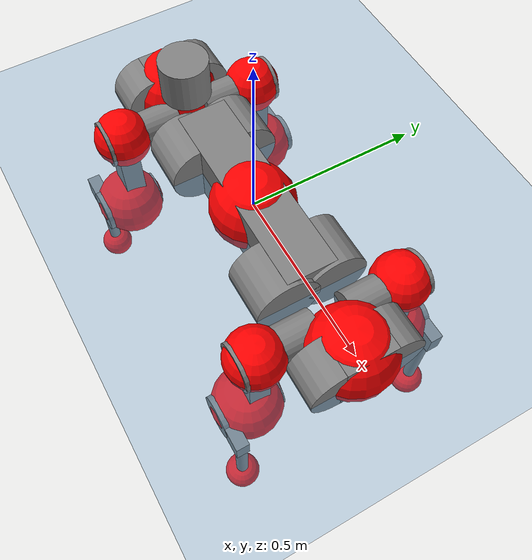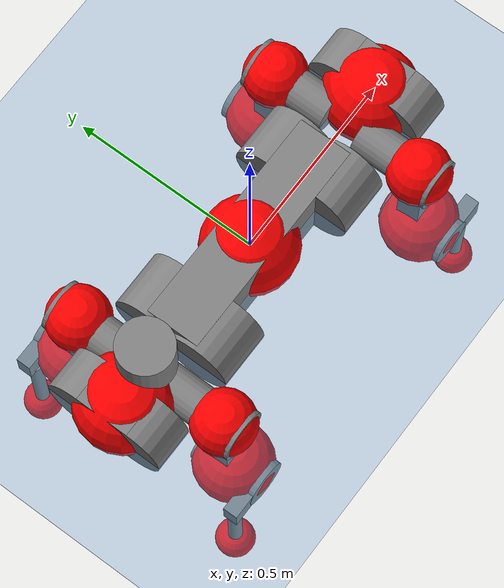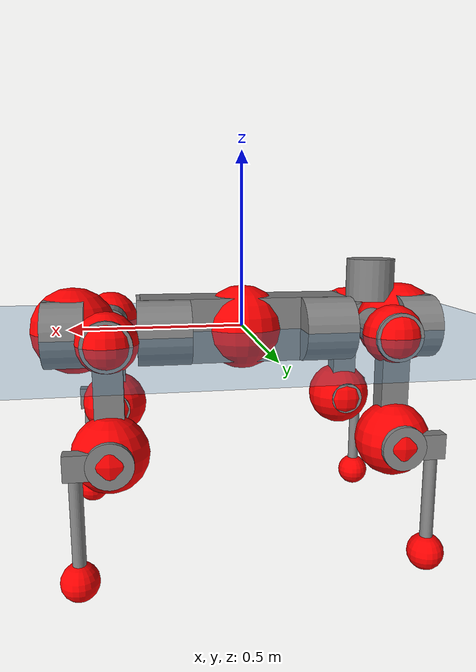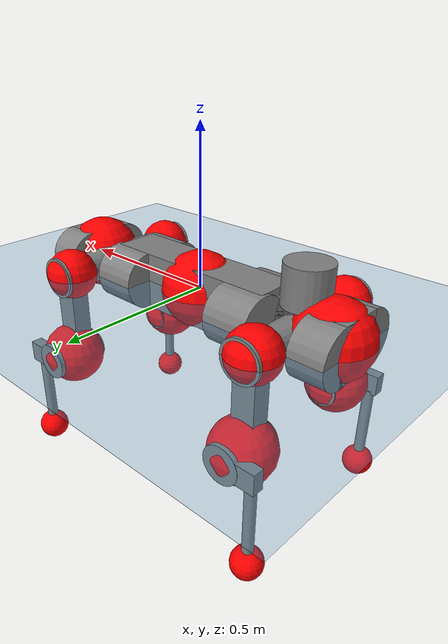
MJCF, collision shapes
<mujoco model="anymal_c">
  <compiler angle="radian" assetdir="assets" balanceinertia="true" inertiafromgeom="false"/>

  <option timestep="0.005" density="1.2" viscosity="2e-05"/>

  <size nkey="1"/>

  <visual>
    <quality shadowsize="8192"/>
    <map shadowclip="0.5"/>
  </visual>

  <default>
    <default class="/">
      <material specular="0" shininess="0.25"/>
      <geom contype="0" conaffinity="0" group="1" solref="-1000 -80"/>
      <site size="0.01 0.005 0.005" group="5"/>
      <general forcelimited="true" forcerange="-80 80" biastype="affine" gainprm="80" biasprm="0 -80 -2"/>
      <default class="anymal_c">
        <joint armature="0.01" damping="0.01" frictionloss="0.1"/>
        <default class="visual">
          <geom type="mesh" group="2"/>
          <default class="visual_zflip"/>
        </default>
        <default class="collision">
          <geom type="cylinder" group="3"/>
          <default class="foot">
            <geom size="0.03 0 0" type="sphere" condim="6" priority="1" friction="0.8 0.02 0.01" solimp="0.015 1 0.03"/>
          </default>
        </default>
      </default>
      <default class="reward_collision_sphere">
        <geom group="5" rgba="1 0 0 1"/>
      </default>
    </default>
  </default>

  <asset>
    <texture type="skybox" colorspace="auto" name="//unnamed_texture_0" builtin="gradient" rgb1="0.95 0.95 0.95" rgb2="0.95 0.95 0.95" width="100" height="600"/>
    <texture type="2d" colorspace="auto" name="texplane" builtin="checker" rgb1="0.345 0.575 0.748" rgb2="0.345 0.575 0.748" markrgb="1 1 1" width="512" height="512"/>
    <texture type="2d" colorspace="linear" name="base" file="base.png"/>
    <texture type="2d" colorspace="linear" name="top_shell" file="top_shell.png"/>
    <texture type="2d" colorspace="linear" name="bottom_shell" file="bottom_shell.png"/>
    <texture type="2d" colorspace="linear" name="remote" file="remote.png"/>
    <texture type="2d" colorspace="linear" name="hatch" file="hatch.png"/>
    <texture type="2d" colorspace="linear" name="handle" file="handle.png"/>
    <texture type="2d" colorspace="linear" name="face" file="face.png"/>
    <texture type="2d" colorspace="linear" name="battery" file="battery.png"/>
    <texture type="2d" colorspace="linear" name="lidar_cage" file="lidar_cage.png"/>
    <texture type="2d" colorspace="linear" name="depth_camera" file="depth_camera.png"/>
    <texture type="2d" colorspace="linear" name="wide_angle_camera" file="wide_angle_camera.png"/>
    <texture type="2d" colorspace="linear" name="lidar" file="lidar.png"/>
    <texture type="2d" colorspace="linear" name="drive" file="drive.png"/>
    <texture type="2d" colorspace="linear" name="hip_l" file="hip_l.png"/>
    <texture type="2d" colorspace="linear" name="shank_l" file="shank_l.png"/>
    <texture type="2d" colorspace="linear" name="foot" file="foot.png"/>
    <texture type="2d" colorspace="linear" name="thigh" file="thigh.png"/>
    <texture type="2d" colorspace="linear" name="shank_r" file="shank_r.png"/>
    <texture type="2d" colorspace="linear" name="hip_r" file="hip_r.png"/>
    <material name="MatPlane" class="/" texture="texplane" texuniform="true" texrepeat="2 2" specular="0.9" shininess="0.5"/>
    <material name="black_plastic" class="/" rgba="0.007 0.007 0.007 1"/>
    <material name="green" class="/" rgba="0.052 0.178 0.033 1"/>
    <material name="red" class="/" rgba="0.178 0.006 0.005 1"/>
    <material name="yellow" class="/" rgba="0.178 0.119 0.006 1"/>
    <material name="lwl" class="/" rgba="0.8 0.8 0.8 1"/>
    <material name="base" class="/" texture="base"/>
    <material name="top_shell" class="/" texture="top_shell"/>
    <material name="bottom_shell" class="/" texture="bottom_shell"/>
    <material name="hip_l" class="/" texture="hip_l"/>
    <material name="thigh" class="/" texture="thigh"/>
    <material name="shank_l" class="/" texture="shank_l"/>
    <material name="foot" class="/" texture="foot"/>
    <material name="hip_r" class="/" texture="hip_r"/>
    <material name="shank" class="/" texture="shank_r"/>
    <material name="hatch" class="/" texture="hatch"/>
    <material name="remote" class="/" texture="remote"/>
    <material name="handle" class="/" texture="handle"/>
    <material name="face" class="/" texture="face"/>
    <material name="depth_camera" class="/" texture="depth_camera"/>
    <material name="wide_angle_camera" class="/" texture="wide_angle_camera"/>
    <material name="battery" class="/" texture="battery"/>
    <material name="lidar_cage" class="/" texture="lidar_cage"/>
    <material name="lidar" class="/" texture="lidar"/>
    <material name="drive" class="/" texture="drive"/>
    <mesh name="base_0" class="/" file="base_0.obj"/>
    <mesh name="base_1" class="/" file="base_1.obj"/>
    <mesh name="base_2" class="/" file="base_2.obj"/>
    <mesh name="base_3" class="/" file="base_3.obj"/>
    <mesh name="base_4" class="/" file="base_4.obj"/>
    <mesh name="base_5" class="/" file="base_5.obj"/>
    <mesh name="top_shell" class="/" file="top_shell.obj"/>
    <mesh name="bottom_shell" class="/" file="bottom_shell.obj"/>
    <mesh name="remote" class="/" file="remote.obj"/>
    <mesh name="handle" class="/" file="handle.obj"/>
    <mesh name="face" class="/" file="face.obj"/>
    <mesh name="wide_angle_camera" class="/" file="wide_angle_camera.obj"/>
    <mesh name="depth_camera" class="/" file="depth_camera.obj"/>
    <mesh name="battery" class="/" file="battery.obj"/>
    <mesh name="lidar_cage" class="/" file="lidar_cage.obj"/>
    <mesh name="lidar" class="/" file="lidar.obj"/>
    <mesh name="drive" class="/" file="drive.obj"/>
    <mesh name="hip_l" class="/" file="hip_l.obj"/>
    <mesh name="thigh" class="/" file="thigh.obj"/>
    <mesh name="shank_l" class="/" file="shank_l.obj"/>
    <mesh name="foot" class="/" file="foot.obj"/>
    <mesh name="hip_r" class="/" file="hip_r.obj"/>
    <mesh name="hatch" class="/" file="hatch.obj"/>
    <mesh name="shank_r" class="/" file="shank_r.obj"/>
  </asset>

  <worldbody>
    <geom name="floor" class="/" size="100 100 0.125" type="plane" group="0" material="MatPlane"/>
    <light name="toplight_shadow" class="/" pos="0 0 5" dir="0.0990148 0.0990148 -0.990148" type="directional" ambient="0.04 0.04 0.04" diffuse="0.55 0.55 0.55" specular="0.12 0.12 0.12"/>
    <light name="toplight_fill" class="/" pos="0 0 5" dir="0.0990148 0.0990148 -0.990148" type="directional" castshadow="false" ambient="0.04 0.04 0.04" diffuse="0.3 0.3 0.3" specular="0.08 0.08 0.08"/>
    <body name="trunk" childclass="anymal_c" pos="-0.000349518 -0.000334465 -0.00267558" quat="0.999999 0.000955948 -0.000867749 -0.000274549">
      <inertial pos="0.00299979 0.00208958 0.0498955" quat="0.490582 0.506736 0.49719 0.505322" mass="20.7684" diaginertia="0.958443 0.616958 0.236087"/>
      <joint name="//unnamed_joint_0" type="free" armature="0" damping="0" frictionloss="0"/>
      <geom name="//unnamed_geom_1" class="visual" material="green" mesh="base_0"/>
      <geom name="//unnamed_geom_2" class="visual" material="yellow" mesh="base_1"/>
      <geom name="//unnamed_geom_3" class="visual" material="red" mesh="base_2"/>
      <geom name="//unnamed_geom_4" class="visual" material="black_plastic" mesh="base_3"/>
      <geom name="//unnamed_geom_5" class="visual" material="lwl" mesh="base_4"/>
      <geom name="//unnamed_geom_6" class="visual" material="base" mesh="base_5"/>
      <geom name="trunk_1" class="collision" size="0.297189 0.0717352 0.0922309" type="box"/>
      <geom name="trunk_2" class="collision" size="0.0922309 0.0742971" pos="0.23412 0.0692337 0" quat="0.707107 0 0.707107 0"/>
      <geom name="trunk_3" class="collision" size="0.0922309 0.0742971" pos="-0.23412 0.0692337 0" quat="0.707107 0 0.707107 0"/>
      <geom name="trunk_4" class="collision" size="0.0922309 0.0742971" pos="0.23412 -0.0692337 0" quat="0.707107 0 0.707107 0"/>
      <geom name="trunk_5" class="collision" size="0.0922309 0.0742971" pos="-0.23412 -0.0692337 0" quat="0.707107 0 0.707107 0"/>
      <geom name="//unnamed_geom_12" class="visual" material="top_shell" mesh="top_shell"/>
      <geom name="//unnamed_geom_13" class="visual" material="bottom_shell" mesh="bottom_shell"/>
      <geom name="//unnamed_geom_14" class="visual" material="remote" mesh="remote"/>
      <geom name="//unnamed_geom_15" class="visual" material="handle" mesh="handle"/>
      <geom name="//unnamed_geom_16" class="visual" pos="0.446173 0 0" quat="1 0 0 0" material="face" mesh="face"/>
      <geom name="trunk_6" class="collision" size="0.0563634 0.0717352 0.0922309" pos="0.505376 0 0" type="box"/>
      <geom name="//unnamed_geom_18" class="collision" size="0.0922309 0.0563634" pos="0.505376 0.0692337 0" quat="0.707107 0 0.707107 0"/>
      <geom name="//unnamed_geom_19" class="collision" size="0.0922309 0.0563634" pos="0.505376 -0.0692337 0" quat="0.707107 0 0.707107 0"/>
      <geom name="//unnamed_geom_20" class="visual" pos="0.496923 0 -0.0289467" quat="0.965926 0 0.258819 0" material="depth_camera" mesh="depth_camera"/>
      <geom name="//unnamed_geom_21" class="visual" pos="0.5522 0 0.0151032" material="wide_angle_camera" mesh="wide_angle_camera"/>
      <geom name="//unnamed_geom_22" class="visual_zflip" pos="-0.446173 0 0" quat="0 0 0 1" material="face" mesh="face"/>
      <geom name="trunk_7" class="collision" size="0.0563634 0.0717352 0.0922309" pos="-0.505376 0 0" quat="0 0 0 1" type="box"/>
      <geom name="//unnamed_geom_24" class="collision" size="0.0922309 0.0563634" pos="-0.505376 -0.0692337 0" quat="0 -0.707107 0 0.707107"/>
      <geom name="//unnamed_geom_25" class="collision" size="0.0922309 0.0563634" pos="-0.505376 0.0692337 0" quat="0 -0.707107 0 0.707107"/>
      <geom name="//unnamed_geom_26" class="visual" pos="-0.496923 0 -0.0289467" quat="0 -0.258819 0 0.965926" material="depth_camera" mesh="depth_camera"/>
      <geom name="//unnamed_geom_27" class="visual_zflip" pos="-0.5522 0 0.0151032" quat="0 0 0 1" material="wide_angle_camera" mesh="wide_angle_camera"/>
      <geom name="//unnamed_geom_28" class="visual" material="battery" mesh="battery"/>
      <geom name="//unnamed_geom_29" class="visual" pos="0 0.0744738 0.0298216" quat="0.683013 -0.183013 0.183013 0.683013" material="depth_camera" mesh="depth_camera"/>
      <geom name="//unnamed_geom_30" class="visual" pos="0 -0.0744738 0.0298216" quat="0.683013 0.183013 0.183013 -0.683013" material="depth_camera" mesh="depth_camera"/>
      <geom name="//unnamed_geom_31" class="visual" pos="-0.391814 0 0.0741541" quat="1 0 0 0" material="lidar_cage" mesh="lidar_cage"/>
      <geom name="trunk_8" class="collision" size="0.0717352 0.0614873" pos="-0.391814 0 0.134688"/>
      <geom name="//unnamed_geom_33" class="visual" pos="-0.391814 -3.43213e-05 0.143465" quat="0.707107 0 0 -0.707107" material="lidar" mesh="lidar"/>
      <geom name="//unnamed_geom_34" class="visual" pos="0.322816 0.102869 -3.42342e-10" quat="0.258819 0.965926 0 0" material="drive" mesh="drive"/>
      <geom name="//unnamed_geom_35" class="visual" pos="0.322816 -0.102869 3.42342e-10" quat="0.258819 -0.965926 0 0" material="drive" mesh="drive"/>
      <geom name="//unnamed_geom_36" class="visual" pos="-0.322816 0.102869 3.42342e-10" quat="0 0 0.965926 -0.258819" material="drive" mesh="drive"/>
      <geom name="//unnamed_geom_37" class="visual" pos="-0.322816 -0.102869 -3.42342e-10" quat="0 0 -0.965926 -0.258819" material="drive" mesh="drive"/>
      <geom name="//unnamed_geom_38" class="visual" pos="0.124864 0 0.0736496" quat="1 0 0 0" material="hatch" mesh="hatch"/>
      <geom name="//unnamed_geom_39" class="reward_collision_sphere" size="0.122975"/>
      <geom name="//unnamed_geom_40" class="reward_collision_sphere" size="0.122975" pos="0.484386 0 0"/>
      <geom name="//unnamed_geom_41" class="reward_collision_sphere" size="0.122975" pos="-0.484386 0 0"/>
      <site name="imu" pos="0.26315 0.0128538 0.0361662" size="0.0102479"/>
      <camera name="track" pos="0 -1.97811 0" quat="0.707107 0.707107 0 0" mode="trackcom"/>
      <camera name="ego_camera" pos="0.484386 0 -0.040356" quat="-0.5 -0.5 0.5 0.5"/>
      <body name="LF_HIP" pos="0.323274 0.102887 0.00183932" quat="0.258817 0.965926 1.91497e-06 2.36807e-06">
        <inertial pos="0.0584744 -0.0150586 -0.0108151" quat="-0.129241 0.710943 -0.147903 0.675264" mass="2.95451" diaginertia="0.00857167 0.00466393 0.00340381"/>
        <joint name="LF_HAA" pos="0 0 0" axis="0.999953 0.00613774 0.00747279" range="-0.718382 0.499876" armature="0.0102815" damping="0.000653051" frictionloss="0.105172"/>
        <geom name="//unnamed_geom_42" class="visual" pos="0 -2.01384e-05 3.30772e-06" quat="0.258819 -0.965926 0 0" material="hip_l" mesh="hip_l"/>
        <geom name="//unnamed_geom_43" class="visual" pos="0.0644771 -0.0769846 -0.0445939" quat="0.183013 -0.683013 0.683013 0.183013" material="drive" mesh="drive"/>
        <geom name="//unnamed_geom_44" class="collision" size="0.0512394 0.0717352" pos="0.0644771 -0.0118289 -0.00696645" quat="-0.353553 -0.612372 0.612372 -0.353553"/>
        <body name="LF_THIGH" pos="0.0627155 -0.0710799 -0.0402232" quat="0.182789 -0.682898 0.683125 0.183247">
          <inertial pos="0.0332702 2.45777e-05 -0.248376" quat="0.993351 -0.00430469 -0.082433 0.08025" mass="3.15965" diaginertia="0.0418287 0.0273925 0.00412005"/>
          <joint name="LF_HFE" pos="0 0 0" axis="0.999997 -0.000352808 0.00252481" stiffness="0.00240288" range="-3.16087 3.13642" armature="0.00940639" damping="0.0166666" frictionloss="0.102476"/>
          <geom name="//unnamed_geom_45" class="visual" pos="0.00173812 2.73887e-06 0" quat="0.707107 0 0 -0.707107" material="thigh" mesh="thigh"/>
          <geom name="//unnamed_geom_46" class="collision" size="0.0666112 0.0409915" pos="0.0430565 0 0" quat="0.5 0.5 -0.5 -0.5"/>
          <geom name="//unnamed_geom_47" class="collision" size="0.0384296 0.0307436 0.144817" pos="0.0322924 0 -0.142572" quat="0.707107 0 0 -0.707107" type="box"/>
          <geom name="//unnamed_geom_48" class="visual" pos="0.107964 0 -0.287536" quat="1 0 0 0" material="drive" mesh="drive"/>
          <geom name="//unnamed_geom_49" class="collision" size="0.0512394 0.0717352" pos="0.0326153 0 -0.287536" quat="0.707107 0 0.707107 0"/>
          <geom name="//unnamed_geom_50" class="reward_collision_sphere" size="0.0819831" pos="0.0269103 0 0"/>
          <body name="LF_SHANK" pos="0.106966 -6.04791e-05 -0.288377" quat="1 6.63974e-05 5.94587e-05 -2.28031e-05">
            <inertial pos="0.00327605 -0.0632108 -0.0812768" quat="0.993228 -0.113343 -0.0020365 -0.025446" mass="0.627332" diaginertia="0.0141115 0.00868692 0.00116668"/>
            <joint name="LF_KFE" pos="0 0 0" axis="0.999979 -0.000565173 -0.00652521" stiffness="0.000269195" range="-3.19227 3.15674" armature="0.0106718" damping="0.014245" frictionloss="0.116092"/>
            <geom name="//unnamed_geom_51" class="visual" pos="0.000566762 0.003022 0" quat="0.707107 0 0 -0.707107" material="shank_l" mesh="shank_l"/>
            <geom name="LF_kfe_act" class="collision" size="0.0614873 0.0204958" pos="0.0215283 0 0" quat="0.5 0.5 -0.5 -0.5"/>
            <geom name="//unnamed_geom_53" class="collision" size="0.0589243 0.0345866 0.019471" pos="0.0215283 -0.0568696 0" quat="0.5 0.5 -0.5 -0.5" type="box"/>
            <geom name="//unnamed_geom_54" class="visual" pos="0.014047 -0.0860133 -0.340978" quat="0.382683 0 0 -0.92388" material="foot" mesh="foot"/>
            <geom name="LF_calf" class="collision" size="0.0179338 0.144753" pos="0.0140472 -0.0869872 -0.170489" quat="0.707107 0 0 -0.707107"/>
            <geom name="LF_foot" class="foot" size="0.0304573" pos="0.0140472 -0.0869872 -0.318277" quat="0.707107 0 0 -0.707107"/>
            <geom name="//unnamed_geom_57" class="reward_collision_sphere" size="0.102479" pos="-0.0538206 0 0"/>
            <geom name="//unnamed_geom_58" class="reward_collision_sphere" size="0.0512394" pos="0.0140472 -0.0869872 -0.318277"/>
            <site name="LF_foot" class="foot" pos="0.0140472 -0.0869872 -0.318277" quat="0.707107 0 0 -0.707107" size="0.0102479"/>
          </body>
        </body>
      </body>
      <body name="RF_HIP" pos="0.322908 -0.103272 0.00132094" quat="0.259137 -0.96584 0.000318967 -0.00111558">
        <inertial pos="0.061599 0.0155652 -0.00798481" quat="0.127989 0.671671 0.131279 0.717804" mass="3.12753" diaginertia="0.0084725 0.00469114 0.00345624"/>
        <joint name="RF_HAA" pos="0 0 0" axis="0.999999 -0.000958845 -0.000659361" range="-0.546825 0.712752" armature="0.00975016" damping="0.00572134" frictionloss="0.109346"/>
        <geom name="//unnamed_geom_59" class="visual" pos="0 2.01383e-05 3.30771e-06" quat="0.258819 0.965926 0 0" material="hip_r" mesh="hip_r"/>
        <geom name="//unnamed_geom_60" class="visual" pos="0.0644771 0.0769846 -0.0445939" quat="0.183013 0.683013 0.683013 -0.183013" material="drive" mesh="drive"/>
        <geom name="//unnamed_geom_61" class="collision" size="0.0512394 0.0717352" pos="0.0644771 0.0118289 -0.00696645" quat="-0.353553 0.612372 0.612372 0.353553"/>
        <body name="RF_THIGH" pos="0.0650815 0.0704181 -0.0422524" quat="0.18307 0.683011 0.682992 -0.18304">
          <inertial pos="0.0331484 -0.000213581 -0.246791" quat="0.992445 -0.00777525 -0.0849454 0.0881853" mass="3.3794" diaginertia="0.0438916 0.0274218 0.00435516"/>
          <joint name="RF_HFE" pos="0 0 0" axis="0.999998 -0.00179942 0.000503443" stiffness="0.0137221" range="-3.13879 3.12164" armature="0.0103188" damping="0" frictionloss="0.0914572"/>
          <geom name="//unnamed_geom_62" class="visual" pos="0.00173812 2.73887e-06 0" quat="0.707107 0 0 -0.707107" material="thigh" mesh="thigh"/>
          <geom name="//unnamed_geom_63" class="collision" size="0.0666112 0.0409915" pos="0.0430565 0 0" quat="0.5 0.5 0.5 0.5"/>
          <geom name="//unnamed_geom_64" class="collision" size="0.0384296 0.0307436 0.144817" pos="0.0322924 0 -0.142572" quat="0.707107 0 0 0.707107" type="box"/>
          <geom name="//unnamed_geom_65" class="visual" pos="0.107964 0 -0.287536" quat="1 0 0 0" material="drive" mesh="drive"/>
          <geom name="//unnamed_geom_66" class="collision" size="0.0512394 0.0717352" pos="0.0326153 0 -0.287536" quat="0.707107 0 0.707107 0"/>
          <geom name="//unnamed_geom_67" class="reward_collision_sphere" size="0.0819831" pos="0.0269103 0 0"/>
          <body name="RF_SHANK" pos="0.104946 -0.00069949 -0.288029" quat="1 -3.13806e-05 -0.000532397 -6.50543e-05">
            <inertial pos="0.00708175 0.0580212 -0.0789555" quat="0.991371 0.127113 0.000483637 0.032029" mass="0.617965" diaginertia="0.0141249 0.00872187 0.0011139"/>
            <joint name="RF_KFE" pos="0 0 0" axis="1 0.000500329 0.000178075" range="-3.1312 3.14454" armature="0.0103108" damping="0" frictionloss="0.101115"/>
            <geom name="//unnamed_geom_68" class="visual" pos="0.000566759 -0.003022 0" quat="0.707107 0 0 0.707107" material="shank" mesh="shank_r"/>
            <geom name="RF_kfe_act" class="collision" size="0.0614873 0.0204958" pos="0.0215283 0 0" quat="0.5 0.5 0.5 0.5"/>
            <geom name="//unnamed_geom_70" class="collision" size="0.0589243 0.0345866 0.019471" pos="0.0215283 0.0568696 0" quat="0.5 0.5 0.5 0.5" type="box"/>
            <geom name="//unnamed_geom_71" class="visual" pos="0.0140473 0.0860133 -0.340978" quat="0.382683 0 0 0.92388" material="foot" mesh="foot"/>
            <geom name="RF_calf" class="collision" size="0.0179338 0.144753" pos="0.0140472 0.0869872 -0.170489" quat="0.707107 0 0 0.707107"/>
            <geom name="RF_foot" class="foot" size="0.0285694" pos="0.0140472 0.0869872 -0.318277" quat="0.707107 0 0 0.707107"/>
            <geom name="//unnamed_geom_74" class="reward_collision_sphere" size="0.102479" pos="-0.0538206 0 0"/>
            <geom name="//unnamed_geom_75" class="reward_collision_sphere" size="0.0512394" pos="0.0140472 0.0869872 -0.318277"/>
            <site name="RF_foot" class="foot" pos="0.0140472 0.0869872 -0.318277" quat="0.707107 0 0 0.707107" size="0.0102479"/>
          </body>
        </body>
      </body>
      <body name="LH_HIP" pos="-0.322001 0.101748 0.00253278" quat="-0.000194624 -0.000323428 0.965833 -0.259166">
        <inertial pos="0.062093 0.0122995 -0.0111256" quat="0.137119 0.679659 0.127475 0.709234" mass="2.96354" diaginertia="0.00834983 0.00458261 0.00331379"/>
        <joint name="LH_HAA" pos="0 0 0" axis="0.999903 -0.00792022 -0.0114526" stiffness="8.90937e-05" range="-0.544392 0.775048" armature="0.0114764" damping="0.013264" frictionloss="0.103093"/>
        <geom name="//unnamed_geom_76" class="visual" pos="0 2.01383e-05 3.30771e-06" quat="-0.258819 -0.965926 0 0" material="hip_r" mesh="hip_r"/>
        <geom name="//unnamed_geom_77" class="visual" pos="0.0644771 0.0769846 -0.0445939" quat="0.183013 0.683013 0.683013 -0.183013" material="drive" mesh="drive"/>
        <geom name="//unnamed_geom_78" class="collision" size="0.0512394 0.0717352" pos="0.0644771 0.0118289 -0.00696645" quat="-0.353553 0.612372 0.612372 0.353553"/>
        <body name="LH_THIGH" pos="0.0636101 0.0695953 -0.0406094" quat="0.182185 0.682585 0.683669 -0.182981">
          <inertial pos="0.0358657 -0.00203504 -0.250291" quat="0.992769 -0.00508948 -0.0807074 0.0887113" mass="3.38727" diaginertia="0.0466074 0.0289968 0.00460462"/>
          <joint name="LH_HFE" pos="0 0 0" axis="0.9999 -0.0141052 0.000712634" range="-3.17048 3.15039" armature="0.010653" damping="0" frictionloss="0.102447"/>
          <geom name="//unnamed_geom_79" class="visual" pos="0.00173812 2.73887e-06 0" quat="0.707107 0 0 -0.707107" material="thigh" mesh="thigh"/>
          <geom name="//unnamed_geom_80" class="collision" size="0.0666112 0.0409915" pos="0.0430565 0 0" quat="0.5 0.5 -0.5 -0.5"/>
          <geom name="//unnamed_geom_81" class="collision" size="0.0384296 0.0307436 0.144817" pos="0.0322924 0 -0.142572" quat="0.707107 0 0 -0.707107" type="box"/>
          <geom name="//unnamed_geom_82" class="visual" pos="0.107964 0 -0.287536" quat="1 0 0 0" material="drive" mesh="drive"/>
          <geom name="//unnamed_geom_83" class="collision" size="0.0512394 0.0717352" pos="0.0326153 0 -0.287536" quat="0.707107 0 0.707107 0"/>
          <geom name="//unnamed_geom_84" class="reward_collision_sphere" size="0.0819831" pos="0.0269103 0 0"/>
          <body name="LH_SHANK" pos="0.107043 0.000234865 -0.289616" quat="0.999999 0.00113064 -0.00044361 -0.000188423">
            <inertial pos="0.00322301 0.0618843 -0.0839643" quat="0.994086 0.104609 0.00411591 0.0288773" mass="0.62361" diaginertia="0.0143938 0.00850658 0.00114161"/>
            <joint name="LH_KFE" pos="0 0 0" axis="0.99996 -0.00418502 -0.00796752" stiffness="0.00251709" range="-3.15515 3.08849" armature="0.0116243" damping="0" frictionloss="0.103308"/>
            <geom name="//unnamed_geom_85" class="visual" pos="0.000566759 -0.003022 0" quat="-0.707107 0 0 -0.707107" material="shank" mesh="shank_r"/>
            <geom name="LH_kfe_act" class="collision" size="0.0614873 0.0204958" pos="0.0215283 0 0" quat="0.5 0.5 -0.5 -0.5"/>
            <geom name="//unnamed_geom_87" class="collision" size="0.0589243 0.0345866 0.019471" pos="0.0215283 0.0568696 0" quat="0.5 0.5 -0.5 -0.5" type="box"/>
            <geom name="//unnamed_geom_88" class="visual" pos="0.0140473 0.0860133 -0.340978" quat="-0.382683 0 0 -0.92388" material="foot" mesh="foot"/>
            <geom name="LH_calf" class="collision" size="0.0179338 0.144753" pos="0.0140472 0.0869872 -0.170489" quat="0.707107 0 0 -0.707107"/>
            <geom name="LH_foot" class="foot" size="0.03161" pos="0.0140472 0.0869872 -0.318277" quat="0.707107 0 0 -0.707107"/>
            <geom name="//unnamed_geom_91" class="reward_collision_sphere" size="0.102479" pos="-0.0538206 0 0"/>
            <geom name="//unnamed_geom_92" class="reward_collision_sphere" size="0.0512394" pos="0.0140472 0.0869872 -0.318277"/>
            <site name="LH_foot" class="foot" pos="0.0140472 0.0869872 -0.318277" quat="0.707107 0 0 -0.707107" size="0.0102479"/>
          </body>
        </body>
      </body>
      <body name="RH_HIP" pos="-0.3201 -0.10327 0.00290978" quat="-4.72497e-06 6.53867e-06 -0.965925 -0.258823">
        <inertial pos="0.0587628 -0.0162654 -0.00857763" quat="-0.140019 0.705579 -0.133664 0.68168" mass="2.99305" diaginertia="0.0090378 0.00483141 0.00357923"/>
        <joint name="RH_HAA" pos="0 0 0" axis="0.999907 0.0116473 0.00709007" stiffness="0.000278548" range="-0.727469 0.49281" armature="0.0102993" damping="0.0108414" frictionloss="0.115944"/>
        <geom name="//unnamed_geom_93" class="visual" pos="0 -2.01384e-05 3.30772e-06" quat="-0.258819 0.965926 0 0" material="hip_l" mesh="hip_l"/>
        <geom name="//unnamed_geom_94" class="visual" pos="0.0644771 -0.0769846 -0.0445939" quat="-0.183013 0.683013 -0.683013 -0.183013" material="drive" mesh="drive"/>
        <geom name="//unnamed_geom_95" class="collision" size="0.0512394 0.0717352" pos="0.0644771 -0.0118289 -0.00696645" quat="0.353553 0.612372 -0.612372 0.353553"/>
        <body name="RH_THIGH" pos="0.0644343 -0.0717035 -0.0435311" quat="-0.183138 0.683293 -0.682745 -0.182839">
          <inertial pos="0.0332308 -0.000624388 -0.250222" quat="0.992699 -0.00101972 -0.0802709 0.0900275" mass="3.23161" diaginertia="0.0455609 0.0286583 0.00436503"/>
          <joint name="RH_HFE" pos="0 0 0" axis="1 0.000180903 0.00059124" stiffness="0.00111057" range="-3.1372 3.10388" armature="0.010023" damping="0.00863191" frictionloss="0.107911"/>
          <geom name="//unnamed_geom_96" class="visual" pos="0.00173812 2.73887e-06 0" quat="0.707107 0 0 -0.707107" material="thigh" mesh="thigh"/>
          <geom name="//unnamed_geom_97" class="collision" size="0.0666112 0.0409915" pos="0.0430565 0 0" quat="0.5 0.5 0.5 0.5"/>
          <geom name="//unnamed_geom_98" class="collision" size="0.0384296 0.0307436 0.144817" pos="0.0322924 0 -0.142572" quat="0.707107 0 0 0.707107" type="box"/>
          <geom name="//unnamed_geom_99" class="visual" pos="0.107964 0 -0.287536" quat="1 0 0 0" material="drive" mesh="drive"/>
          <geom name="//unnamed_geom_100" class="collision" size="0.0512394 0.0717352" pos="0.0326153 0 -0.287536" quat="0.707107 0 0.707107 0"/>
          <geom name="//unnamed_geom_101" class="reward_collision_sphere" size="0.0819831" pos="0.0269103 0 0"/>
          <body name="RH_SHANK" pos="0.105272 0.00239919 -0.289383" quat="0.999999 0.000159756 -1.80249e-05 0.00127365">
            <inertial pos="0.00515963 -0.0605722 -0.0812274" quat="0.992614 -0.115224 -0.00601071 -0.0374893" mass="0.649404" diaginertia="0.0150212 0.00891979 0.00114649"/>
            <joint name="RH_KFE" pos="0 0 0" axis="0.99989 0.0133878 -0.0064573" range="-3.07516 3.15641" armature="0.010131" damping="0" frictionloss="0.107771"/>
            <geom name="//unnamed_geom_102" class="visual" pos="0.000566762 0.003022 0" quat="0.707107 0 0 -0.707107" material="shank_l" mesh="shank_l"/>
            <geom name="RH_kfe_act" class="collision" size="0.0614873 0.0204958" pos="0.0215283 0 0" quat="0.5 0.5 0.5 0.5"/>
            <geom name="//unnamed_geom_104" class="collision" size="0.0589243 0.0345866 0.019471" pos="0.0215283 -0.0568696 0" quat="0.5 0.5 0.5 0.5" type="box"/>
            <geom name="//unnamed_geom_105" class="visual" pos="0.014047 -0.0860133 -0.340978" quat="0.382683 0 0 -0.92388" material="foot" mesh="foot"/>
            <geom name="RH_calf" class="collision" size="0.0179338 0.144753" pos="0.0140472 -0.0869872 -0.170489" quat="0.707107 0 0 0.707107"/>
            <geom name="RH_foot" class="foot" size="0.0304319" pos="0.0140472 -0.0869872 -0.318277" quat="0.707107 0 0 0.707107"/>
            <geom name="//unnamed_geom_108" class="reward_collision_sphere" size="0.102479" pos="-0.0538206 0 0"/>
            <geom name="//unnamed_geom_109" class="reward_collision_sphere" size="0.0512394" pos="0.0140472 -0.0869872 -0.318277"/>
            <site name="RH_foot" class="foot" pos="0.0140472 -0.0869872 -0.318277" quat="0.707107 0 0 0.707107" size="0.0102479"/>
          </body>
        </body>
      </body>
    </body>
  </worldbody>

  <contact>
    <pair class="/" geom1="floor" geom2="LF_foot" name="//unnamed_contact_0"/>
    <pair class="/" geom1="floor" geom2="RF_foot" name="//unnamed_contact_1"/>
    <pair class="/" geom1="floor" geom2="LH_foot" name="//unnamed_contact_2"/>
    <pair class="/" geom1="floor" geom2="RH_foot" name="//unnamed_contact_3"/>
  </contact>

  <actuator>
    <general name="LF_HAA" class="/" joint="LF_HAA" forcerange="-83.2826 83.2826" gainprm="82.5241" biasprm="0 -82.5241 -1.91043"/>
    <general name="LF_HFE" class="/" joint="LF_HFE" forcerange="-78.6653 78.6653" gainprm="82.5241" biasprm="0 -82.5241 -1.91043"/>
    <general name="LF_KFE" class="/" joint="LF_KFE" forcerange="-85.1981 85.1981" gainprm="82.5241" biasprm="0 -82.5241 -1.91043"/>
    <general name="RF_HAA" class="/" joint="RF_HAA" forcerange="-84.6164 84.6164" gainprm="82.5241" biasprm="0 -82.5241 -1.91043"/>
    <general name="RF_HFE" class="/" joint="RF_HFE" forcerange="-86.3772 86.3772" gainprm="82.5241" biasprm="0 -82.5241 -1.91043"/>
    <general name="RF_KFE" class="/" joint="RF_KFE" forcerange="-82.5845 82.5845" gainprm="82.5241" biasprm="0 -82.5241 -1.91043"/>
    <general name="LH_HAA" class="/" joint="LH_HAA" forcerange="-82.4395 82.4395" gainprm="82.5241" biasprm="0 -82.5241 -1.91043"/>
    <general name="LH_HFE" class="/" joint="LH_HFE" forcerange="-74.148 74.148" gainprm="82.5241" biasprm="0 -82.5241 -1.91043"/>
    <general name="LH_KFE" class="/" joint="LH_KFE" forcerange="-90.7367 90.7367" gainprm="82.5241" biasprm="0 -82.5241 -1.91043"/>
    <general name="RH_HAA" class="/" joint="RH_HAA" forcerange="-82.5326 82.5326" gainprm="82.5241" biasprm="0 -82.5241 -1.91043"/>
    <general name="RH_HFE" class="/" joint="RH_HFE" forcerange="-84.3596 84.3596" gainprm="82.5241" biasprm="0 -82.5241 -1.91043"/>
    <general name="RH_KFE" class="/" joint="RH_KFE" forcerange="-85.3787 85.3787" gainprm="82.5241" biasprm="0 -82.5241 -1.91043"/>
  </actuator>

  <sensor>
    <gyro site="imu" name="imu_angular_velocity"/>
    <velocimeter site="imu" name="imu_linear_velocity"/>
    <framelinvel objtype="site" objname="LF_foot" name="LF_foot_global_linear_velocity"/>
    <framelinvel objtype="site" objname="RF_foot" name="RF_foot_global_linear_velocity"/>
    <framelinvel objtype="site" objname="LH_foot" name="LH_foot_global_linear_velocity"/>
    <framelinvel objtype="site" objname="RH_foot" name="RH_foot_global_linear_velocity"/>
  </sensor>

  <keyframe>
    <key name="home" qpos="0 0 0.55 1 0 0 0 0 0.4 -0.8 0 -0.4 0.8 0 -0.4 0.8 0 0.4 -0.8"/>
  </keyframe>
</mujoco>
